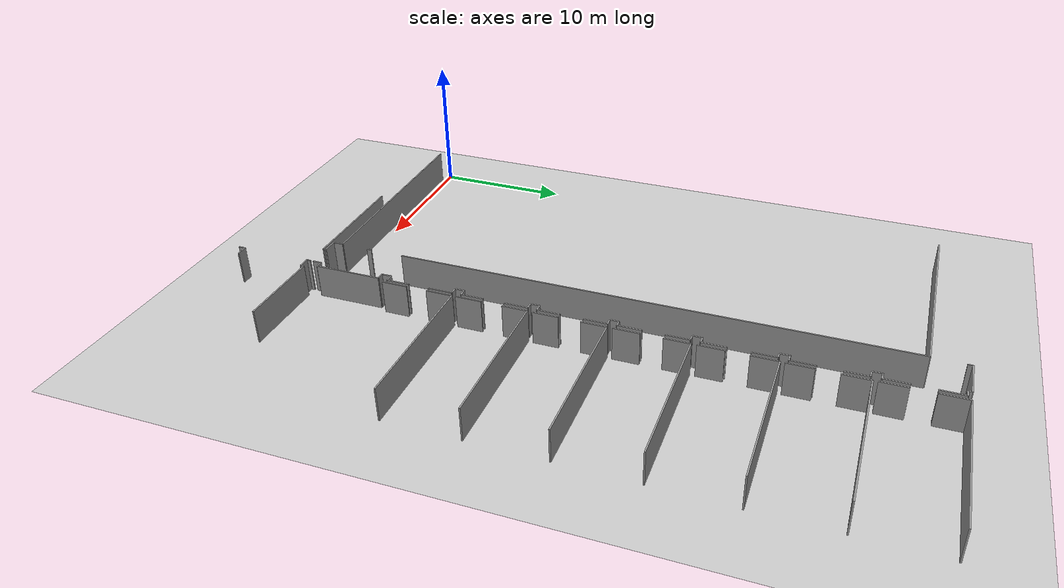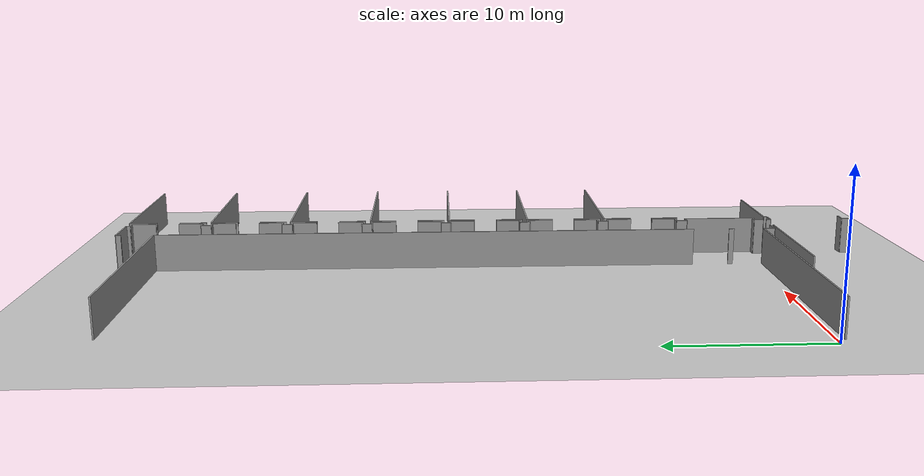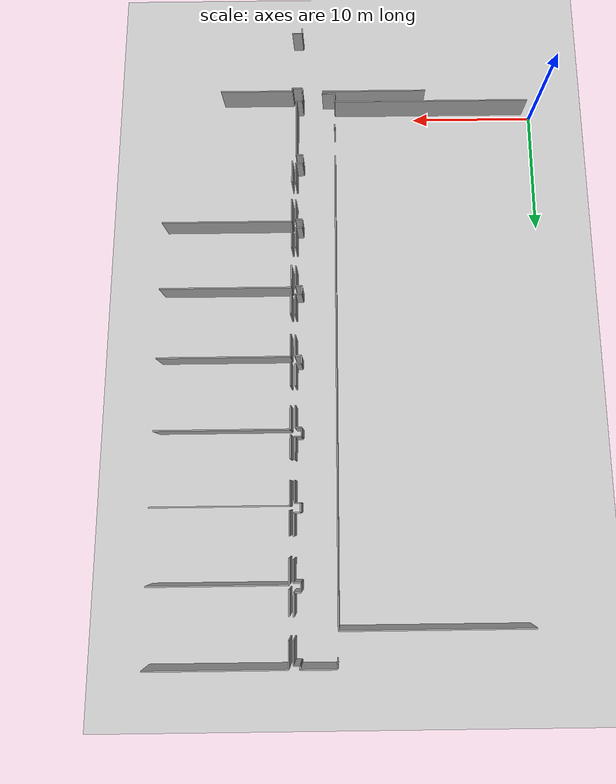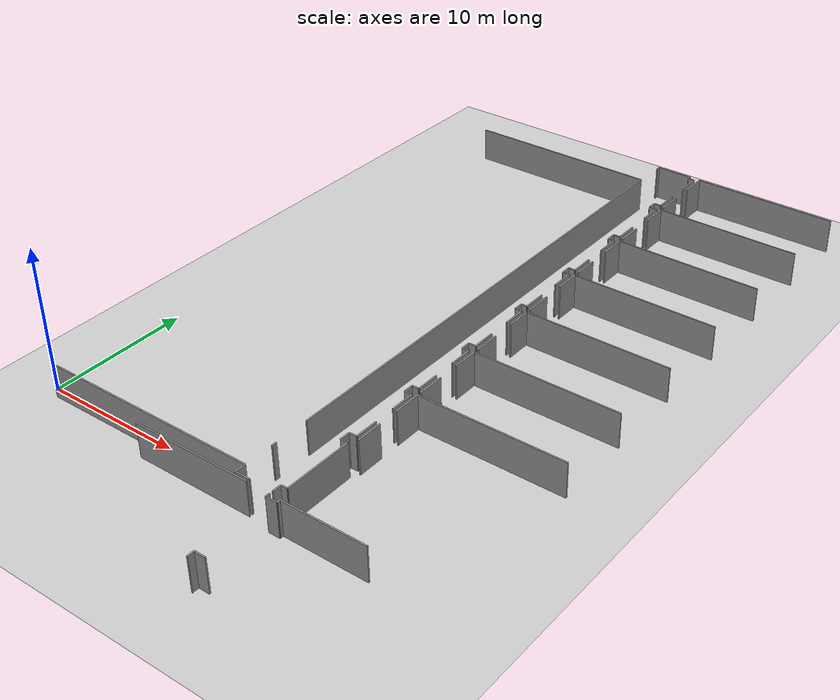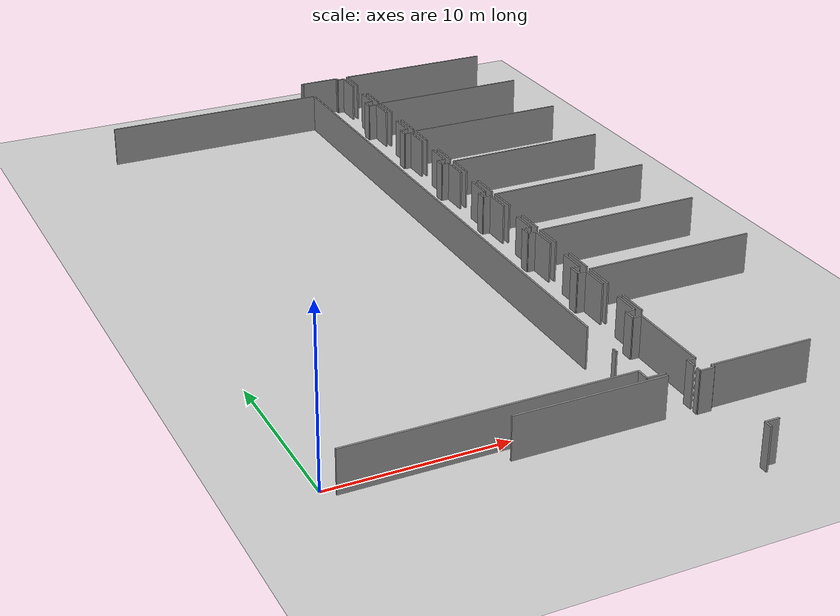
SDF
<sdf version="1.6">
 <world name="default">
  <model name="ground_plane">
   <static>1</static>
   <link name="link">
    <collision name="collision">
     <geometry><plane><normal>0 0 1</normal><size>100 100</size></plane></geometry>
     <surface><friction><ode><mu>100</mu><mu2>50</mu2></ode></friction></surface>
    </collision>
    <visual name="visual">
     <cast_shadows>0</cast_shadows>
     <geometry><plane><normal>0 0 1</normal><size>100 100</size></plane></geometry>
     <material>
      <script><uri>file://media/materials/scripts/gazebo.material</uri><name>Gazebo/Grey</name></script>
     </material>
    </visual>
   </link>
  </model>
  <model name="50015848">
   <static>1</static>
   <link name="Wall_534">
    <collision name="Wall_534_Collision">
     <geometry><box><size>8.658475474 0.1 2.5</size></box></geometry>
     <pose>4.329237737 0 1.25 0 0 0</pose>
    </collision>
    <visual name="Wall_534_Visual">
     <pose>4.329237737 0 1.25 0 0 0</pose>
     <geometry><box><size>8.658475474 0.1 2.5</size></box></geometry>
     <material>
      <script><uri>file://media/materials/scripts/gazebo.material</uri><name>Gazebo/Grey</name></script>
      <ambient>1 1 1 1</ambient>
     </material>
    </visual>
    <pose>140.965309009 -45.2511592208 0 0 0 0.0</pose>
   </link>
   <link name="Wall_535">
    <collision name="Wall_535_Collision">
     <geometry><box><size>0.300414211318 0.1 2.5</size></box></geometry>
     <pose>0.150207105659 0 1.25 0 0 0</pose>
    </collision>
    <visual name="Wall_535_Visual">
     <pose>0.150207105659 0 1.25 0 0 0</pose>
     <geometry><box><size>0.300414211318 0.1 2.5</size></box></geometry>
     <material>
      <script><uri>file://media/materials/scripts/gazebo.material</uri><name>Gazebo/Grey</name></script>
      <ambient>1 1 1 1</ambient>
     </material>
    </visual>
    <pose>151.308793586 -45.2511592208 0 0 0 -1.57079632679</pose>
   </link>
   <link name="Wall_536">
    <collision name="Wall_536_Collision">
     <geometry><box><size>0.817512321677 0.1 2.5</size></box></geometry>
     <pose>0.408756160838 0 1.25 0 0 0</pose>
    </collision>
    <visual name="Wall_536_Visual">
     <pose>0.408756160838 0 1.25 0 0 0</pose>
     <geometry><box><size>0.817512321677 0.1 2.5</size></box></geometry>
     <material>
      <script><uri>file://media/materials/scripts/gazebo.material</uri><name>Gazebo/Grey</name></script>
      <ambient>1 1 1 1</ambient>
     </material>
    </visual>
    <pose>151.308793586 -45.5515734321 0 0 0 0.0</pose>
   </link>
   <link name="Wall_537">
    <collision name="Wall_537_Collision">
     <geometry><box><size>0.250429752171 0.1 2.5</size></box></geometry>
     <pose>0.125214876085 0 1.25 0 0 0</pose>
    </collision>
    <visual name="Wall_537_Visual">
     <pose>0.125214876085 0 1.25 0 0 0</pose>
     <geometry><box><size>0.250429752171 0.1 2.5</size></box></geometry>
     <material>
      <script><uri>file://media/materials/scripts/gazebo.material</uri><name>Gazebo/Grey</name></script>
      <ambient>1 1 1 1</ambient>
     </material>
    </visual>
    <pose>152.126305907 -45.5515734321 0 0 0 1.57079632679</pose>
   </link>
   <link name="Wall_538">
    <collision name="Wall_538_Collision">
     <geometry><box><size>6.00574694416 0.1 2.5</size></box></geometry>
     <pose>3.00287347208 0 1.25 0 0 0</pose>
    </collision>
    <visual name="Wall_538_Visual">
     <pose>3.00287347208 0 1.25 0 0 0</pose>
     <geometry><box><size>6.00574694416 0.1 2.5</size></box></geometry>
     <material>
      <script><uri>file://media/materials/scripts/gazebo.material</uri><name>Gazebo/Grey</name></script>
      <ambient>1 1 1 1</ambient>
     </material>
    </visual>
    <pose>152.126305907 -45.3011436799 0 0 0 0.0</pose>
   </link>
   <link name="Wall_625">
    <collision name="Wall_625_Collision">
     <geometry><box><size>0.807363192916 0.1 2.5</size></box></geometry>
     <pose>0.403681596458 0 1.25 0 0 0</pose>
    </collision>
    <visual name="Wall_625_Visual">
     <pose>0.403681596458 0 1.25 0 0 0</pose>
     <geometry><box><size>0.807363192916 0.1 2.5</size></box></geometry>
     <material>
      <script><uri>file://media/materials/scripts/gazebo.material</uri><name>Gazebo/Grey</name></script>
      <ambient>1 1 1 1</ambient>
     </material>
    </visual>
    <pose>152.159290576 -50.7700017127 0 0 0 3.14159265359</pose>
   </link>
   <link name="Wall_626">
    <collision name="Wall_626_Collision">
     <geometry><box><size>0.491979016676 0.1 2.5</size></box></geometry>
     <pose>0.245989508338 0 1.25 0 0 0</pose>
    </collision>
    <visual name="Wall_626_Visual">
     <pose>0.245989508338 0 1.25 0 0 0</pose>
     <geometry><box><size>0.491979016676 0.1 2.5</size></box></geometry>
     <material>
      <script><uri>file://media/materials/scripts/gazebo.material</uri><name>Gazebo/Grey</name></script>
      <ambient>1 1 1 1</ambient>
     </material>
    </visual>
    <pose>151.351927383 -50.7700017127 0 0 0 -1.57079632679</pose>
   </link>
   <link name="Wall_653">
    <collision name="Wall_653_Collision">
     <geometry><box><size>0.479800062163 0.1 2.5</size></box></geometry>
     <pose>0.239900031082 0 1.25 0 0 0</pose>
    </collision>
    <visual name="Wall_653_Visual">
     <pose>0.239900031082 0 1.25 0 0 0</pose>
     <geometry><box><size>0.479800062163 0.1 2.5</size></box></geometry>
     <material>
      <script><uri>file://media/materials/scripts/gazebo.material</uri><name>Gazebo/Grey</name></script>
      <ambient>1 1 1 1</ambient>
     </material>
    </visual>
    <pose>151.792653299 -44.3927966559 0 0 0 3.14159265359</pose>
   </link>
   <link name="Wall_654">
    <collision name="Wall_654_Collision">
     <geometry><box><size>0.630768352479 0.1 2.5</size></box></geometry>
     <pose>0.31538417624 0 1.25 0 0 0</pose>
    </collision>
    <visual name="Wall_654_Visual">
     <pose>0.31538417624 0 1.25 0 0 0</pose>
     <geometry><box><size>0.630768352479 0.1 2.5</size></box></geometry>
     <material>
      <script><uri>file://media/materials/scripts/gazebo.material</uri><name>Gazebo/Grey</name></script>
      <ambient>1 1 1 1</ambient>
     </material>
    </visual>
    <pose>151.312853237 -44.3927966559 0 0 0 -1.57079632679</pose>
   </link>
   <link name="Wall_655">
    <collision name="Wall_655_Collision">
     <geometry><box><size>1.07352409467 0.1 2.5</size></box></geometry>
     <pose>0.536762047333 0 1.25 0 0 0</pose>
    </collision>
    <visual name="Wall_655_Visual">
     <pose>0.536762047333 0 1.25 0 0 0</pose>
     <geometry><box><size>1.07352409467 0.1 2.5</size></box></geometry>
     <material>
      <script><uri>file://media/materials/scripts/gazebo.material</uri><name>Gazebo/Grey</name></script>
      <ambient>1 1 1 1</ambient>
     </material>
    </visual>
    <pose>149.638246992 -45.0235650083 0 0 0 3.14159265359</pose>
   </link>
   <link name="Wall_656">
    <collision name="Wall_656_Collision">
     <geometry><box><size>0.75458772336 0.1 2.5</size></box></geometry>
     <pose>0.37729386168 0 1.25 0 0 0</pose>
    </collision>
    <visual name="Wall_656_Visual">
     <pose>0.37729386168 0 1.25 0 0 0</pose>
     <geometry><box><size>0.75458772336 0.1 2.5</size></box></geometry>
     <material>
      <script><uri>file://media/materials/scripts/gazebo.material</uri><name>Gazebo/Grey</name></script>
      <ambient>1 1 1 1</ambient>
     </material>
    </visual>
    <pose>148.564722897 -45.0235650083 0 0 0 1.57079632679</pose>
   </link>
   <link name="Wall_657">
    <collision name="Wall_657_Collision">
     <geometry><box><size>16.143457935 0.1 2.5</size></box></geometry>
     <pose>8.07172896752 0 1.25 0 0 0</pose>
    </collision>
    <visual name="Wall_657_Visual">
     <pose>8.07172896752 0 1.25 0 0 0</pose>
     <geometry><box><size>16.143457935 0.1 2.5</size></box></geometry>
     <material>
      <script><uri>file://media/materials/scripts/gazebo.material</uri><name>Gazebo/Grey</name></script>
      <ambient>1 1 1 1</ambient>
     </material>
    </visual>
    <pose>148.564722897 -44.268977285 0 0 0 3.14159265359</pose>
   </link>
   <link name="Wall_703">
    <collision name="Wall_703_Collision">
     <geometry><box><size>0.337204803075 0.1 2.5</size></box></geometry>
     <pose>0.168602401538 0 1.25 0 0 0</pose>
    </collision>
    <visual name="Wall_703_Visual">
     <pose>0.168602401538 0 1.25 0 0 0</pose>
     <geometry><box><size>0.337204803075 0.1 2.5</size></box></geometry>
     <material>
      <script><uri>file://media/materials/scripts/gazebo.material</uri><name>Gazebo/Grey</name></script>
      <ambient>1 1 1 1</ambient>
     </material>
    </visual>
    <pose>148.672811118 -0.360801527444 0 0 0 1.57079632679</pose>
   </link>
   <link name="Wall_704">
    <collision name="Wall_704_Collision">
     <geometry><box><size>2.65247480162 0.1 2.5</size></box></geometry>
     <pose>1.32623740081 0 1.25 0 0 0</pose>
    </collision>
    <visual name="Wall_704_Visual">
     <pose>1.32623740081 0 1.25 0 0 0</pose>
     <geometry><box><size>2.65247480162 0.1 2.5</size></box></geometry>
     <material>
      <script><uri>file://media/materials/scripts/gazebo.material</uri><name>Gazebo/Grey</name></script>
      <ambient>1 1 1 1</ambient>
     </material>
    </visual>
    <pose>148.672811118 -0.0235967243687 0 0 0 0.0</pose>
   </link>
   <link name="Wall_705">
    <collision name="Wall_705_Collision">
     <geometry><box><size>0.266922086407 0.1 2.5</size></box></geometry>
     <pose>0.133461043204 0 1.25 0 0 0</pose>
    </collision>
    <visual name="Wall_705_Visual">
     <pose>0.133461043204 0 1.25 0 0 0</pose>
     <geometry><box><size>0.266922086407 0.1 2.5</size></box></geometry>
     <material>
      <script><uri>file://media/materials/scripts/gazebo.material</uri><name>Gazebo/Grey</name></script>
      <ambient>1 1 1 1</ambient>
     </material>
    </visual>
    <pose>151.32528592 -0.0235967243687 0 0 0 -1.57079632679</pose>
   </link>
   <link name="Wall_706">
    <collision name="Wall_706_Collision">
     <geometry><box><size>0.467367379432 0.1 2.5</size></box></geometry>
     <pose>0.233683689716 0 1.25 0 0 0</pose>
    </collision>
    <visual name="Wall_706_Visual">
     <pose>0.233683689716 0 1.25 0 0 0</pose>
     <geometry><box><size>0.467367379432 0.1 2.5</size></box></geometry>
     <material>
      <script><uri>file://media/materials/scripts/gazebo.material</uri><name>Gazebo/Grey</name></script>
      <ambient>1 1 1 1</ambient>
     </material>
    </visual>
    <pose>151.32528592 -0.290518810776 0 0 0 0.0</pose>
   </link>
   <link name="Wall_707">
    <collision name="Wall_707_Collision">
     <geometry><box><size>1.66826304004 0.1 2.5</size></box></geometry>
     <pose>0.834131520022 0 1.25 0 0 0</pose>
    </collision>
    <visual name="Wall_707_Visual">
     <pose>0.834131520022 0 1.25 0 0 0</pose>
     <geometry><box><size>1.66826304004 0.1 2.5</size></box></geometry>
     <material>
      <script><uri>file://media/materials/scripts/gazebo.material</uri><name>Gazebo/Grey</name></script>
      <ambient>1 1 1 1</ambient>
     </material>
    </visual>
    <pose>151.792653299 -0.290518810776 0 0 0 -1.57079632679</pose>
   </link>
   <link name="Wall_708">
    <collision name="Wall_708_Collision">
     <geometry><box><size>1.66826304004 0.1 2.5</size></box></geometry>
     <pose>0.834131520022 0 1.25 0 0 0</pose>
    </collision>
    <visual name="Wall_708_Visual">
     <pose>0.834131520022 0 1.25 0 0 0</pose>
     <geometry><box><size>1.66826304004 0.1 2.5</size></box></geometry>
     <material>
      <script><uri>file://media/materials/scripts/gazebo.material</uri><name>Gazebo/Grey</name></script>
      <ambient>1 1 1 1</ambient>
     </material>
    </visual>
    <pose>151.792653299 -3.53341917805 0 0 0 -1.57079632679</pose>
   </link>
   <link name="Wall_709">
    <collision name="Wall_709_Collision">
     <geometry><box><size>0.515068284607 0.1 2.5</size></box></geometry>
     <pose>0.257534142303 0 1.25 0 0 0</pose>
    </collision>
    <visual name="Wall_709_Visual">
     <pose>0.257534142303 0 1.25 0 0 0</pose>
     <geometry><box><size>0.515068284607 0.1 2.5</size></box></geometry>
     <material>
      <script><uri>file://media/materials/scripts/gazebo.material</uri><name>Gazebo/Grey</name></script>
      <ambient>1 1 1 1</ambient>
     </material>
    </visual>
    <pose>151.792653299 -5.20168221809 0 0 0 3.14159265359</pose>
   </link>
   <link name="Wall_710">
    <collision name="Wall_710_Collision">
     <geometry><box><size>0.681767724502 0.1 2.5</size></box></geometry>
     <pose>0.340883862251 0 1.25 0 0 0</pose>
    </collision>
    <visual name="Wall_710_Visual">
     <pose>0.340883862251 0 1.25 0 0 0</pose>
     <geometry><box><size>0.681767724502 0.1 2.5</size></box></geometry>
     <material>
      <script><uri>file://media/materials/scripts/gazebo.material</uri><name>Gazebo/Grey</name></script>
      <ambient>1 1 1 1</ambient>
     </material>
    </visual>
    <pose>151.277585015 -5.20168221809 0 0 0 -1.57079632679</pose>
   </link>
   <link name="Wall_711">
    <collision name="Wall_711_Collision">
     <geometry><box><size>0.551097691708 0.1 2.5</size></box></geometry>
     <pose>0.275548845854 0 1.25 0 0 0</pose>
    </collision>
    <visual name="Wall_711_Visual">
     <pose>0.275548845854 0 1.25 0 0 0</pose>
     <geometry><box><size>0.551097691708 0.1 2.5</size></box></geometry>
     <material>
      <script><uri>file://media/materials/scripts/gazebo.material</uri><name>Gazebo/Grey</name></script>
      <ambient>1 1 1 1</ambient>
     </material>
    </visual>
    <pose>151.277585015 -5.88344994259 0 0 0 0.0</pose>
   </link>
   <link name="Wall_712">
    <collision name="Wall_712_Collision">
     <geometry><box><size>1.62487551459 0.1 2.5</size></box></geometry>
     <pose>0.812437757296 0 1.25 0 0 0</pose>
    </collision>
    <visual name="Wall_712_Visual">
     <pose>0.812437757296 0 1.25 0 0 0</pose>
     <geometry><box><size>1.62487551459 0.1 2.5</size></box></geometry>
     <material>
      <script><uri>file://media/materials/scripts/gazebo.material</uri><name>Gazebo/Grey</name></script>
      <ambient>1 1 1 1</ambient>
     </material>
    </visual>
    <pose>151.828682707 -5.88344994259 0 0 0 -1.57079632679</pose>
   </link>
   <link name="Wall_713">
    <collision name="Wall_713_Collision">
     <geometry><box><size>1.70175516496 0.1 2.5</size></box></geometry>
     <pose>0.850877582478 0 1.25 0 0 0</pose>
    </collision>
    <visual name="Wall_713_Visual">
     <pose>0.850877582478 0 1.25 0 0 0</pose>
     <geometry><box><size>1.70175516496 0.1 2.5</size></box></geometry>
     <material>
      <script><uri>file://media/materials/scripts/gazebo.material</uri><name>Gazebo/Grey</name></script>
      <ambient>1 1 1 1</ambient>
     </material>
    </visual>
    <pose>151.828682707 -9.11569372467 0 0 0 -1.57079632679</pose>
   </link>
   <link name="Wall_714">
    <collision name="Wall_714_Collision">
     <geometry><box><size>0.503396786532 0.1 2.5</size></box></geometry>
     <pose>0.251698393266 0 1.25 0 0 0</pose>
    </collision>
    <visual name="Wall_714_Visual">
     <pose>0.251698393266 0 1.25 0 0 0</pose>
     <geometry><box><size>0.503396786532 0.1 2.5</size></box></geometry>
     <material>
      <script><uri>file://media/materials/scripts/gazebo.material</uri><name>Gazebo/Grey</name></script>
      <ambient>1 1 1 1</ambient>
     </material>
    </visual>
    <pose>151.828682707 -10.8174488896 0 0 0 3.14159265359</pose>
   </link>
   <link name="Wall_715">
    <collision name="Wall_715_Collision">
     <geometry><box><size>0.684051278473 0.1 2.5</size></box></geometry>
     <pose>0.342025639237 0 1.25 0 0 0</pose>
    </collision>
    <visual name="Wall_715_Visual">
     <pose>0.342025639237 0 1.25 0 0 0</pose>
     <geometry><box><size>0.684051278473 0.1 2.5</size></box></geometry>
     <material>
      <script><uri>file://media/materials/scripts/gazebo.material</uri><name>Gazebo/Grey</name></script>
      <ambient>1 1 1 1</ambient>
     </material>
    </visual>
    <pose>151.32528592 -10.8174488896 0 0 0 -1.57079632679</pose>
   </link>
   <link name="Wall_716">
    <collision name="Wall_716_Collision">
     <geometry><box><size>0.450621316976 0.1 2.5</size></box></geometry>
     <pose>0.225310658488 0 1.25 0 0 0</pose>
    </collision>
    <visual name="Wall_716_Visual">
     <pose>0.225310658488 0 1.25 0 0 0</pose>
     <geometry><box><size>0.450621316976 0.1 2.5</size></box></geometry>
     <material>
      <script><uri>file://media/materials/scripts/gazebo.material</uri><name>Gazebo/Grey</name></script>
      <ambient>1 1 1 1</ambient>
     </material>
    </visual>
    <pose>151.32528592 -11.5015001681 0 0 0 0.0</pose>
   </link>
   <link name="Wall_717">
    <collision name="Wall_717_Collision">
     <geometry><box><size>1.6850091025 0.1 2.5</size></box></geometry>
     <pose>0.84250455125 0 1.25 0 0 0</pose>
    </collision>
    <visual name="Wall_717_Visual">
     <pose>0.84250455125 0 1.25 0 0 0</pose>
     <geometry><box><size>1.6850091025 0.1 2.5</size></box></geometry>
     <material>
      <script><uri>file://media/materials/scripts/gazebo.material</uri><name>Gazebo/Grey</name></script>
      <ambient>1 1 1 1</ambient>
     </material>
    </visual>
    <pose>151.775907237 -11.5015001681 0 0 0 -1.57079632679</pose>
   </link>
   <link name="Wall_718">
    <collision name="Wall_718_Collision">
     <geometry><box><size>1.71190429372 0.1 2.5</size></box></geometry>
     <pose>0.855952146858 0 1.25 0 0 0</pose>
    </collision>
    <visual name="Wall_718_Visual">
     <pose>0.855952146858 0 1.25 0 0 0</pose>
     <geometry><box><size>1.71190429372 0.1 2.5</size></box></geometry>
     <material>
      <script><uri>file://media/materials/scripts/gazebo.material</uri><name>Gazebo/Grey</name></script>
      <ambient>1 1 1 1</ambient>
     </material>
    </visual>
    <pose>151.775907237 -14.7038040203 0 0 0 -1.57079632679</pose>
   </link>
   <link name="Wall_719">
    <collision name="Wall_719_Collision">
     <geometry><box><size>0.498322222152 0.1 2.5</size></box></geometry>
     <pose>0.249161111076 0 1.25 0 0 0</pose>
    </collision>
    <visual name="Wall_719_Visual">
     <pose>0.249161111076 0 1.25 0 0 0</pose>
     <geometry><box><size>0.498322222152 0.1 2.5</size></box></geometry>
     <material>
      <script><uri>file://media/materials/scripts/gazebo.material</uri><name>Gazebo/Grey</name></script>
      <ambient>1 1 1 1</ambient>
     </material>
    </visual>
    <pose>151.775907237 -16.415708314 0 0 0 3.14159265359</pose>
   </link>
   <link name="Wall_720">
    <collision name="Wall_720_Collision">
     <geometry><box><size>0.681767724502 0.1 2.5</size></box></geometry>
     <pose>0.340883862251 0 1.25 0 0 0</pose>
    </collision>
    <visual name="Wall_720_Visual">
     <pose>0.340883862251 0 1.25 0 0 0</pose>
     <geometry><box><size>0.681767724502 0.1 2.5</size></box></geometry>
     <material>
      <script><uri>file://media/materials/scripts/gazebo.material</uri><name>Gazebo/Grey</name></script>
      <ambient>1 1 1 1</ambient>
     </material>
    </visual>
    <pose>151.277585015 -16.415708314 0 0 0 -1.57079632679</pose>
   </link>
   <link name="Wall_721">
    <collision name="Wall_721_Collision">
     <geometry><box><size>0.478785149287 0.1 2.5</size></box></geometry>
     <pose>0.239392574644 0 1.25 0 0 0</pose>
    </collision>
    <visual name="Wall_721_Visual">
     <pose>0.239392574644 0 1.25 0 0 0</pose>
     <geometry><box><size>0.478785149287 0.1 2.5</size></box></geometry>
     <material>
      <script><uri>file://media/materials/scripts/gazebo.material</uri><name>Gazebo/Grey</name></script>
      <ambient>1 1 1 1</ambient>
     </material>
    </visual>
    <pose>151.277585015 -17.0974760385 0 0 0 0.0</pose>
   </link>
   <link name="Wall_722">
    <collision name="Wall_722_Collision">
     <geometry><box><size>1.68272554853 0.1 2.5</size></box></geometry>
     <pose>0.841362774264 0 1.25 0 0 0</pose>
    </collision>
    <visual name="Wall_722_Visual">
     <pose>0.841362774264 0 1.25 0 0 0</pose>
     <geometry><box><size>1.68272554853 0.1 2.5</size></box></geometry>
     <material>
      <script><uri>file://media/materials/scripts/gazebo.material</uri><name>Gazebo/Grey</name></script>
      <ambient>1 1 1 1</ambient>
     </material>
    </visual>
    <pose>151.756370164 -17.0974760385 0 0 0 -1.57079632679</pose>
   </link>
   <link name="Wall_723">
    <collision name="Wall_723_Collision">
     <geometry><box><size>1.70302380605 0.1 2.5</size></box></geometry>
     <pose>0.851511903025 0 1.25 0 0 0</pose>
    </collision>
    <visual name="Wall_723_Visual">
     <pose>0.851511903025 0 1.25 0 0 0</pose>
     <geometry><box><size>1.70302380605 0.1 2.5</size></box></geometry>
     <material>
      <script><uri>file://media/materials/scripts/gazebo.material</uri><name>Gazebo/Grey</name></script>
      <ambient>1 1 1 1</ambient>
     </material>
    </visual>
    <pose>151.756370164 -20.2926755006 0 0 0 -1.57079632679</pose>
   </link>
   <link name="Wall_724">
    <collision name="Wall_724_Collision">
     <geometry><box><size>0.442248285749 0.1 2.5</size></box></geometry>
     <pose>0.221124142874 0 1.25 0 0 0</pose>
    </collision>
    <visual name="Wall_724_Visual">
     <pose>0.221124142874 0 1.25 0 0 0</pose>
     <geometry><box><size>0.442248285749 0.1 2.5</size></box></geometry>
     <material>
      <script><uri>file://media/materials/scripts/gazebo.material</uri><name>Gazebo/Grey</name></script>
      <ambient>1 1 1 1</ambient>
     </material>
    </visual>
    <pose>151.756370164 -21.9956993067 0 0 0 3.14159265359</pose>
   </link>
   <link name="Wall_725">
    <collision name="Wall_725_Collision">
     <geometry><box><size>0.630768352479 0.1 2.5</size></box></geometry>
     <pose>0.31538417624 0 1.25 0 0 0</pose>
    </collision>
    <visual name="Wall_725_Visual">
     <pose>0.31538417624 0 1.25 0 0 0</pose>
     <geometry><box><size>0.630768352479 0.1 2.5</size></box></geometry>
     <material>
      <script><uri>file://media/materials/scripts/gazebo.material</uri><name>Gazebo/Grey</name></script>
      <ambient>1 1 1 1</ambient>
     </material>
    </visual>
    <pose>151.314121878 -21.9956993067 0 0 0 -1.57079632679</pose>
   </link>
   <link name="Wall_726">
    <collision name="Wall_726_Collision">
     <geometry><box><size>0.491979016676 0.1 2.5</size></box></geometry>
     <pose>0.245989508338 0 1.25 0 0 0</pose>
    </collision>
    <visual name="Wall_726_Visual">
     <pose>0.245989508338 0 1.25 0 0 0</pose>
     <geometry><box><size>0.491979016676 0.1 2.5</size></box></geometry>
     <material>
      <script><uri>file://media/materials/scripts/gazebo.material</uri><name>Gazebo/Grey</name></script>
      <ambient>1 1 1 1</ambient>
     </material>
    </visual>
    <pose>151.314121878 -22.6264676592 0 0 0 0.0</pose>
   </link>
   <link name="Wall_727">
    <collision name="Wall_727_Collision">
     <geometry><box><size>1.68018826634 0.1 2.5</size></box></geometry>
     <pose>0.840094133169 0 1.25 0 0 0</pose>
    </collision>
    <visual name="Wall_727_Visual">
     <pose>0.840094133169 0 1.25 0 0 0</pose>
     <geometry><box><size>1.68018826634 0.1 2.5</size></box></geometry>
     <material>
      <script><uri>file://media/materials/scripts/gazebo.material</uri><name>Gazebo/Grey</name></script>
      <ambient>1 1 1 1</ambient>
     </material>
    </visual>
    <pose>151.806100895 -22.6264676592 0 0 0 -1.57079632679</pose>
   </link>
   <link name="Wall_728">
    <collision name="Wall_728_Collision">
     <geometry><box><size>1.65608408553 0.1 2.5</size></box></geometry>
     <pose>0.828042042766 0 1.25 0 0 0</pose>
    </collision>
    <visual name="Wall_728_Visual">
     <pose>0.828042042766 0 1.25 0 0 0</pose>
     <geometry><box><size>1.65608408553 0.1 2.5</size></box></geometry>
     <material>
      <script><uri>file://media/materials/scripts/gazebo.material</uri><name>Gazebo/Grey</name></script>
      <ambient>1 1 1 1</ambient>
     </material>
    </visual>
    <pose>151.806100895 -25.9155465623 0 0 0 -1.57079632679</pose>
   </link>
   <link name="Wall_729">
    <collision name="Wall_729_Collision">
     <geometry><box><size>0.517098110359 0.1 2.5</size></box></geometry>
     <pose>0.25854905518 0 1.25 0 0 0</pose>
    </collision>
    <visual name="Wall_729_Visual">
     <pose>0.25854905518 0 1.25 0 0 0</pose>
     <geometry><box><size>0.517098110359 0.1 2.5</size></box></geometry>
     <material>
      <script><uri>file://media/materials/scripts/gazebo.material</uri><name>Gazebo/Grey</name></script>
      <ambient>1 1 1 1</ambient>
     </material>
    </visual>
    <pose>151.806100895 -27.5716306478 0 0 0 3.14159265359</pose>
   </link>
   <link name="Wall_730">
    <collision name="Wall_730_Collision">
     <geometry><box><size>0.668573857113 0.1 2.5</size></box></geometry>
     <pose>0.334286928556 0 1.25 0 0 0</pose>
    </collision>
    <visual name="Wall_730_Visual">
     <pose>0.334286928556 0 1.25 0 0 0</pose>
     <geometry><box><size>0.668573857113 0.1 2.5</size></box></geometry>
     <material>
      <script><uri>file://media/materials/scripts/gazebo.material</uri><name>Gazebo/Grey</name></script>
      <ambient>1 1 1 1</ambient>
     </material>
    </visual>
    <pose>151.289002785 -27.5716306478 0 0 0 -1.57079632679</pose>
   </link>
   <link name="Wall_731">
    <collision name="Wall_731_Collision">
     <geometry><box><size>0.491979016676 0.1 2.5</size></box></geometry>
     <pose>0.245989508338 0 1.25 0 0 0</pose>
    </collision>
    <visual name="Wall_731_Visual">
     <pose>0.245989508338 0 1.25 0 0 0</pose>
     <geometry><box><size>0.491979016676 0.1 2.5</size></box></geometry>
     <material>
      <script><uri>file://media/materials/scripts/gazebo.material</uri><name>Gazebo/Grey</name></script>
      <ambient>1 1 1 1</ambient>
     </material>
    </visual>
    <pose>151.289002785 -28.2402045049 0 0 0 0.0</pose>
   </link>
   <link name="Wall_732">
    <collision name="Wall_732_Collision">
     <geometry><box><size>1.70302380605 0.1 2.5</size></box></geometry>
     <pose>0.851511903025 0 1.25 0 0 0</pose>
    </collision>
    <visual name="Wall_732_Visual">
     <pose>0.851511903025 0 1.25 0 0 0</pose>
     <geometry><box><size>1.70302380605 0.1 2.5</size></box></geometry>
     <material>
      <script><uri>file://media/materials/scripts/gazebo.material</uri><name>Gazebo/Grey</name></script>
      <ambient>1 1 1 1</ambient>
     </material>
    </visual>
    <pose>151.780981801 -28.2402045049 0 0 0 -1.57079632679</pose>
   </link>
   <link name="Wall_733">
    <collision name="Wall_733_Collision">
     <geometry><box><size>1.64263648992 0.1 2.5</size></box></geometry>
     <pose>0.821318244962 0 1.25 0 0 0</pose>
    </collision>
    <visual name="Wall_733_Visual">
     <pose>0.821318244962 0 1.25 0 0 0</pose>
     <geometry><box><size>1.64263648992 0.1 2.5</size></box></geometry>
     <material>
      <script><uri>file://media/materials/scripts/gazebo.material</uri><name>Gazebo/Grey</name></script>
      <ambient>1 1 1 1</ambient>
     </material>
    </visual>
    <pose>151.780981801 -31.4884331648 0 0 0 -1.57079632679</pose>
   </link>
   <link name="Wall_734">
    <collision name="Wall_734_Collision">
     <geometry><box><size>0.50644152516 0.1 2.5</size></box></geometry>
     <pose>0.25322076258 0 1.25 0 0 0</pose>
    </collision>
    <visual name="Wall_734_Visual">
     <pose>0.25322076258 0 1.25 0 0 0</pose>
     <geometry><box><size>0.50644152516 0.1 2.5</size></box></geometry>
     <material>
      <script><uri>file://media/materials/scripts/gazebo.material</uri><name>Gazebo/Grey</name></script>
      <ambient>1 1 1 1</ambient>
     </material>
    </visual>
    <pose>151.780981801 -33.1310696547 0 0 0 3.14159265359</pose>
   </link>
   <link name="Wall_735">
    <collision name="Wall_735_Collision">
     <geometry><box><size>0.690648212168 0.1 2.5</size></box></geometry>
     <pose>0.345324106084 0 1.25 0 0 0</pose>
    </collision>
    <visual name="Wall_735_Visual">
     <pose>0.345324106084 0 1.25 0 0 0</pose>
     <geometry><box><size>0.690648212168 0.1 2.5</size></box></geometry>
     <material>
      <script><uri>file://media/materials/scripts/gazebo.material</uri><name>Gazebo/Grey</name></script>
      <ambient>1 1 1 1</ambient>
     </material>
    </visual>
    <pose>151.274540276 -33.1310696547 0 0 0 -1.57079632679</pose>
   </link>
   <link name="Wall_736">
    <collision name="Wall_736_Collision">
     <geometry><box><size>0.537142639662 0.1 2.5</size></box></geometry>
     <pose>0.268571319831 0 1.25 0 0 0</pose>
    </collision>
    <visual name="Wall_736_Visual">
     <pose>0.268571319831 0 1.25 0 0 0</pose>
     <geometry><box><size>0.537142639662 0.1 2.5</size></box></geometry>
     <material>
      <script><uri>file://media/materials/scripts/gazebo.material</uri><name>Gazebo/Grey</name></script>
      <ambient>1 1 1 1</ambient>
     </material>
    </visual>
    <pose>151.274540276 -33.8217178669 0 0 0 0.0</pose>
   </link>
   <link name="Wall_737">
    <collision name="Wall_737_Collision">
     <geometry><box><size>1.74590387506 0.1 2.5</size></box></geometry>
     <pose>0.872951937532 0 1.25 0 0 0</pose>
    </collision>
    <visual name="Wall_737_Visual">
     <pose>0.872951937532 0 1.25 0 0 0</pose>
     <geometry><box><size>1.74590387506 0.1 2.5</size></box></geometry>
     <material>
      <script><uri>file://media/materials/scripts/gazebo.material</uri><name>Gazebo/Grey</name></script>
      <ambient>1 1 1 1</ambient>
     </material>
    </visual>
    <pose>151.811682916 -33.8217178669 0 0 0 -1.57079632679</pose>
   </link>
   <link name="Wall_738">
    <collision name="Wall_738_Collision">
     <geometry><box><size>1.67866589702 0.1 2.5</size></box></geometry>
     <pose>0.839332948512 0 1.25 0 0 0</pose>
    </collision>
    <visual name="Wall_738_Visual">
     <pose>0.839332948512 0 1.25 0 0 0</pose>
     <geometry><box><size>1.67866589702 0.1 2.5</size></box></geometry>
     <material>
      <script><uri>file://media/materials/scripts/gazebo.material</uri><name>Gazebo/Grey</name></script>
      <ambient>1 1 1 1</ambient>
     </material>
    </visual>
    <pose>151.811682916 -37.0844090353 0 0 0 -1.57079632679</pose>
   </link>
   <link name="Wall_739">
    <collision name="Wall_739_Collision">
     <geometry><box><size>0.551858876365 0.1 2.5</size></box></geometry>
     <pose>0.275929438182 0 1.25 0 0 0</pose>
    </collision>
    <visual name="Wall_739_Visual">
     <pose>0.275929438182 0 1.25 0 0 0</pose>
     <geometry><box><size>0.551858876365 0.1 2.5</size></box></geometry>
     <material>
      <script><uri>file://media/materials/scripts/gazebo.material</uri><name>Gazebo/Grey</name></script>
      <ambient>1 1 1 1</ambient>
     </material>
    </visual>
    <pose>151.811682916 -38.7630749323 0 0 0 3.14159265359</pose>
   </link>
   <link name="Wall_740">
    <collision name="Wall_740_Collision">
     <geometry><box><size>0.724901521735 0.1 2.5</size></box></geometry>
     <pose>0.362450760867 0 1.25 0 0 0</pose>
    </collision>
    <visual name="Wall_740_Visual">
     <pose>0.362450760867 0 1.25 0 0 0</pose>
     <geometry><box><size>0.724901521735 0.1 2.5</size></box></geometry>
     <material>
      <script><uri>file://media/materials/scripts/gazebo.material</uri><name>Gazebo/Grey</name></script>
      <ambient>1 1 1 1</ambient>
     </material>
    </visual>
    <pose>151.259824039 -38.7630749323 0 0 0 -1.57079632679</pose>
   </link>
   <link name="Wall_741">
    <collision name="Wall_741_Collision">
     <geometry><box><size>0.52470995693 0.1 2.5</size></box></geometry>
     <pose>0.262354978465 0 1.25 0 0 0</pose>
    </collision>
    <visual name="Wall_741_Visual">
     <pose>0.262354978465 0 1.25 0 0 0</pose>
     <geometry><box><size>0.52470995693 0.1 2.5</size></box></geometry>
     <material>
      <script><uri>file://media/materials/scripts/gazebo.material</uri><name>Gazebo/Grey</name></script>
      <ambient>1 1 1 1</ambient>
     </material>
    </visual>
    <pose>151.259824039 -39.487976454 0 0 0 0.0</pose>
   </link>
   <link name="Wall_742">
    <collision name="Wall_742_Collision">
     <geometry><box><size>4.90482692207 0.1 2.5</size></box></geometry>
     <pose>2.45241346104 0 1.25 0 0 0</pose>
    </collision>
    <visual name="Wall_742_Visual">
     <pose>2.45241346104 0 1.25 0 0 0</pose>
     <geometry><box><size>4.90482692207 0.1 2.5</size></box></geometry>
     <material>
      <script><uri>file://media/materials/scripts/gazebo.material</uri><name>Gazebo/Grey</name></script>
      <ambient>1 1 1 1</ambient>
     </material>
    </visual>
    <pose>151.784533996 -39.487976454 0 0 0 -1.56914095611</pose>
   </link>
   <link name="Wall_743">
    <collision name="Wall_743_Collision">
     <geometry><box><size>0.350398670464 0.1 2.5</size></box></geometry>
     <pose>0.175199335232 0 1.25 0 0 0</pose>
    </collision>
    <visual name="Wall_743_Visual">
     <pose>0.175199335232 0 1.25 0 0 0</pose>
     <geometry><box><size>0.350398670464 0.1 2.5</size></box></geometry>
     <material>
      <script><uri>file://media/materials/scripts/gazebo.material</uri><name>Gazebo/Grey</name></script>
      <ambient>1 1 1 1</ambient>
     </material>
    </visual>
    <pose>148.589334534 -42.1983012896 0 0 0 1.57079632679</pose>
   </link>
   <link name="Wall_744">
    <collision name="Wall_744_Collision">
     <geometry><box><size>36.8080990048 0.1 2.5</size></box></geometry>
     <pose>18.4040495024 0 1.25 0 0 0</pose>
    </collision>
    <visual name="Wall_744_Visual">
     <pose>18.4040495024 0 1.25 0 0 0</pose>
     <geometry><box><size>36.8080990048 0.1 2.5</size></box></geometry>
     <material>
      <script><uri>file://media/materials/scripts/gazebo.material</uri><name>Gazebo/Grey</name></script>
      <ambient>1 1 1 1</ambient>
     </material>
    </visual>
    <pose>148.589334534 -39.3788733198 0 0 0 1.57079632679</pose>
   </link>
   <link name="Wall_745">
    <collision name="Wall_745_Collision">
     <geometry><box><size>14.2613020064 0.1 2.5</size></box></geometry>
     <pose>7.13065100318 0 1.25 0 0 0</pose>
    </collision>
    <visual name="Wall_745_Visual">
     <pose>7.13065100318 0 1.25 0 0 0</pose>
     <geometry><box><size>14.2613020064 0.1 2.5</size></box></geometry>
     <material>
      <script><uri>file://media/materials/scripts/gazebo.material</uri><name>Gazebo/Grey</name></script>
      <ambient>1 1 1 1</ambient>
     </material>
    </visual>
    <pose>148.589334534 -2.57077431509 0 0 0 3.14159265359</pose>
   </link>
   <link name="Wall_812">
    <collision name="Wall_812_Collision">
     <geometry><box><size>1.85703683499 0.1 2.5</size></box></geometry>
     <pose>0.928518417497 0 1.25 0 0 0</pose>
    </collision>
    <visual name="Wall_812_Visual">
     <pose>0.928518417497 0 1.25 0 0 0</pose>
     <geometry><box><size>1.85703683499 0.1 2.5</size></box></geometry>
     <material>
      <script><uri>file://media/materials/scripts/gazebo.material</uri><name>Gazebo/Grey</name></script>
      <ambient>1 1 1 1</ambient>
     </material>
    </visual>
    <pose>152.133410298 -5.41938103001 0 0 0 1.57079632679</pose>
   </link>
   <link name="Wall_813">
    <collision name="Wall_813_Collision">
     <geometry><box><size>1.91869279222 0.1 2.5</size></box></geometry>
     <pose>0.959346396108 0 1.25 0 0 0</pose>
    </collision>
    <visual name="Wall_813_Visual">
     <pose>0.959346396108 0 1.25 0 0 0</pose>
     <geometry><box><size>1.91869279222 0.1 2.5</size></box></geometry>
     <material>
      <script><uri>file://media/materials/scripts/gazebo.material</uri><name>Gazebo/Grey</name></script>
      <ambient>1 1 1 1</ambient>
     </material>
    </visual>
    <pose>152.133410298 -1.95878185082 0 0 0 1.57079632679</pose>
   </link>
   <link name="Wall_814">
    <collision name="Wall_814_Collision">
     <geometry><box><size>10.4698412296 0.1 2.5</size></box></geometry>
     <pose>5.23492061478 0 1.25 0 0 0</pose>
    </collision>
    <visual name="Wall_814_Visual">
     <pose>5.23492061478 0 1.25 0 0 0</pose>
     <geometry><box><size>10.4698412296 0.1 2.5</size></box></geometry>
     <material>
      <script><uri>file://media/materials/scripts/gazebo.material</uri><name>Gazebo/Grey</name></script>
      <ambient>1 1 1 1</ambient>
     </material>
    </visual>
    <pose>152.133410298 -0.0400890586049 0 0 0 0.0</pose>
   </link>
   <link name="Wall_820">
    <collision name="Wall_820_Collision">
     <geometry><box><size>1.85703683499 0.1 2.5</size></box></geometry>
     <pose>0.928518417497 0 1.25 0 0 0</pose>
    </collision>
    <visual name="Wall_820_Visual">
     <pose>0.928518417497 0 1.25 0 0 0</pose>
     <geometry><box><size>1.85703683499 0.1 2.5</size></box></geometry>
     <material>
      <script><uri>file://media/materials/scripts/gazebo.material</uri><name>Gazebo/Grey</name></script>
      <ambient>1 1 1 1</ambient>
     </material>
    </visual>
    <pose>152.147872806 -11.0191628237 0 0 0 1.57079632679</pose>
   </link>
   <link name="Wall_821">
    <collision name="Wall_821_Collision">
     <geometry><box><size>1.88037983114 0.1 2.5</size></box></geometry>
     <pose>0.940189915572 0 1.25 0 0 0</pose>
    </collision>
    <visual name="Wall_821_Visual">
     <pose>0.940189915572 0 1.25 0 0 0</pose>
     <geometry><box><size>1.88037983114 0.1 2.5</size></box></geometry>
     <material>
      <script><uri>file://media/materials/scripts/gazebo.material</uri><name>Gazebo/Grey</name></script>
      <ambient>1 1 1 1</ambient>
     </material>
    </visual>
    <pose>152.147872806 -7.61438385274 0 0 0 1.57079632679</pose>
   </link>
   <link name="Wall_822">
    <collision name="Wall_822_Collision">
     <geometry><box><size>10.4399012997 0.1 2.5</size></box></geometry>
     <pose>5.21995064986 0 1.25 0 0 0</pose>
    </collision>
    <visual name="Wall_822_Visual">
     <pose>5.21995064986 0 1.25 0 0 0</pose>
     <geometry><box><size>10.4399012997 0.1 2.5</size></box></geometry>
     <material>
      <script><uri>file://media/materials/scripts/gazebo.material</uri><name>Gazebo/Grey</name></script>
      <ambient>1 1 1 1</ambient>
     </material>
    </visual>
    <pose>152.147872806 -5.73400402159 0 0 0 0.0</pose>
   </link>
   <link name="Wall_828">
    <collision name="Wall_828_Collision">
     <geometry><box><size>1.82785808981 0.1 2.5</size></box></geometry>
     <pose>0.913929044904 0 1.25 0 0 0</pose>
    </collision>
    <visual name="Wall_828_Visual">
     <pose>0.913929044904 0 1.25 0 0 0</pose>
     <geometry><box><size>1.82785808981 0.1 2.5</size></box></geometry>
     <material>
      <script><uri>file://media/materials/scripts/gazebo.material</uri><name>Gazebo/Grey</name></script>
      <ambient>1 1 1 1</ambient>
     </material>
    </visual>
    <pose>152.118947789 -16.5897658723 0 0 0 1.57079632679</pose>
   </link>
   <link name="Wall_829">
    <collision name="Wall_829_Collision">
     <geometry><box><size>1.86870833307 0.1 2.5</size></box></geometry>
     <pose>0.934354166535 0 1.25 0 0 0</pose>
    </collision>
    <visual name="Wall_829_Visual">
     <pose>0.934354166535 0 1.25 0 0 0</pose>
     <geometry><box><size>1.86870833307 0.1 2.5</size></box></geometry>
     <material>
      <script><uri>file://media/materials/scripts/gazebo.material</uri><name>Gazebo/Grey</name></script>
      <ambient>1 1 1 1</ambient>
     </material>
    </visual>
    <pose>152.118947789 -13.1865092706 0 0 0 1.57079632679</pose>
   </link>
   <link name="Wall_830">
    <collision name="Wall_830_Collision">
     <geometry><box><size>10.4853186509 0.1 2.5</size></box></geometry>
     <pose>5.24265932546 0 1.25 0 0 0</pose>
    </collision>
    <visual name="Wall_830_Visual">
     <pose>5.24265932546 0 1.25 0 0 0</pose>
     <geometry><box><size>10.4853186509 0.1 2.5</size></box></geometry>
     <material>
      <script><uri>file://media/materials/scripts/gazebo.material</uri><name>Gazebo/Grey</name></script>
      <ambient>1 1 1 1</ambient>
     </material>
    </visual>
    <pose>152.118947789 -11.3178009375 0 0 0 0.0</pose>
   </link>
   <link name="Wall_836">
    <collision name="Wall_836_Collision">
     <geometry><box><size>1.89230505744 0.1 2.5</size></box></geometry>
     <pose>0.946152528719 0 1.25 0 0 0</pose>
    </collision>
    <visual name="Wall_836_Visual">
     <pose>0.946152528719 0 1.25 0 0 0</pose>
     <geometry><box><size>1.89230505744 0.1 2.5</size></box></geometry>
     <material>
      <script><uri>file://media/materials/scripts/gazebo.material</uri><name>Gazebo/Grey</name></script>
      <ambient>1 1 1 1</ambient>
     </material>
    </visual>
    <pose>152.134171482 -22.197666969 0 0 0 1.57079632679</pose>
   </link>
   <link name="Wall_837">
    <collision name="Wall_837_Collision">
     <geometry><box><size>1.82252979721 0.1 2.5</size></box></geometry>
     <pose>0.911264898604 0 1.25 0 0 0</pose>
    </collision>
    <visual name="Wall_837_Visual">
     <pose>0.911264898604 0 1.25 0 0 0</pose>
     <geometry><box><size>1.82252979721 0.1 2.5</size></box></geometry>
     <material>
      <script><uri>file://media/materials/scripts/gazebo.material</uri><name>Gazebo/Grey</name></script>
      <ambient>1 1 1 1</ambient>
     </material>
    </visual>
    <pose>152.134171482 -18.7802015871 0 0 0 1.57079632679</pose>
   </link>
   <link name="Wall_838">
    <collision name="Wall_838_Collision">
     <geometry><box><size>10.429752171 0.1 2.5</size></box></geometry>
     <pose>5.21487608548 0 1.25 0 0 0</pose>
    </collision>
    <visual name="Wall_838_Visual">
     <pose>5.21487608548 0 1.25 0 0 0</pose>
     <geometry><box><size>10.429752171 0.1 2.5</size></box></geometry>
     <material>
      <script><uri>file://media/materials/scripts/gazebo.material</uri><name>Gazebo/Grey</name></script>
      <ambient>1 1 1 1</ambient>
     </material>
    </visual>
    <pose>152.134171482 -16.9576717899 0 0 0 0.0</pose>
   </link>
   <link name="Wall_844">
    <collision name="Wall_844_Collision">
     <geometry><box><size>1.84232059829 0.1 2.5</size></box></geometry>
     <pose>0.921160299146 0 1.25 0 0 0</pose>
    </collision>
    <visual name="Wall_844_Visual">
     <pose>0.921160299146 0 1.25 0 0 0</pose>
     <geometry><box><size>1.84232059829 0.1 2.5</size></box></geometry>
     <material>
      <script><uri>file://media/materials/scripts/gazebo.material</uri><name>Gazebo/Grey</name></script>
      <ambient>1 1 1 1</ambient>
     </material>
    </visual>
    <pose>152.147872806 -27.774613223 0 0 0 1.57079632679</pose>
   </link>
   <link name="Wall_845">
    <collision name="Wall_845_Collision">
     <geometry><box><size>1.80350018078 0.1 2.5</size></box></geometry>
     <pose>0.901750090391 0 1.25 0 0 0</pose>
    </collision>
    <visual name="Wall_845_Visual">
     <pose>0.901750090391 0 1.25 0 0 0</pose>
     <geometry><box><size>1.80350018078 0.1 2.5</size></box></geometry>
     <material>
      <script><uri>file://media/materials/scripts/gazebo.material</uri><name>Gazebo/Grey</name></script>
      <ambient>1 1 1 1</ambient>
     </material>
    </visual>
    <pose>152.147872806 -24.3632373183 0 0 0 1.57079632679</pose>
   </link>
   <link name="Wall_846">
    <collision name="Wall_846_Collision">
     <geometry><box><size>10.4289909863 0.1 2.5</size></box></geometry>
     <pose>5.21449549315 0 1.25 0 0 0</pose>
    </collision>
    <visual name="Wall_846_Visual">
     <pose>5.21449549315 0 1.25 0 0 0</pose>
     <geometry><box><size>10.4289909863 0.1 2.5</size></box></geometry>
     <material>
      <script><uri>file://media/materials/scripts/gazebo.material</uri><name>Gazebo/Grey</name></script>
      <ambient>1 1 1 1</ambient>
     </material>
    </visual>
    <pose>152.147872806 -22.5597371376 0 0 0 0.0</pose>
   </link>
   <link name="Wall_852">
    <collision name="Wall_852_Collision">
     <geometry><box><size>1.90042436045 0.1 2.5</size></box></geometry>
     <pose>0.950212180223 0 1.25 0 0 0</pose>
    </collision>
    <visual name="Wall_852_Visual">
     <pose>0.950212180223 0 1.25 0 0 0</pose>
     <geometry><box><size>1.90042436045 0.1 2.5</size></box></geometry>
     <material>
      <script><uri>file://media/materials/scripts/gazebo.material</uri><name>Gazebo/Grey</name></script>
      <ambient>1 1 1 1</ambient>
     </material>
    </visual>
    <pose>152.118947789 -33.3888575253 0 0 0 1.57079632679</pose>
   </link>
   <link name="Wall_853">
    <collision name="Wall_853_Collision">
     <geometry><box><size>1.83521620816 0.1 2.5</size></box></geometry>
     <pose>0.917608104079 0 1.25 0 0 0</pose>
    </collision>
    <visual name="Wall_853_Visual">
     <pose>0.917608104079 0 1.25 0 0 0</pose>
     <geometry><box><size>1.83521620816 0.1 2.5</size></box></geometry>
     <material>
      <script><uri>file://media/materials/scripts/gazebo.material</uri><name>Gazebo/Grey</name></script>
      <ambient>1 1 1 1</ambient>
     </material>
    </visual>
    <pose>152.118947789 -29.9696160458 0 0 0 1.57079632679</pose>
   </link>
   <link name="Wall_854">
    <collision name="Wall_854_Collision">
     <geometry><box><size>10.4579160033 0.1 2.5</size></box></geometry>
     <pose>5.22895800164 0 1.25 0 0 0</pose>
    </collision>
    <visual name="Wall_854_Visual">
     <pose>5.22895800164 0 1.25 0 0 0</pose>
     <geometry><box><size>10.4579160033 0.1 2.5</size></box></geometry>
     <material>
      <script><uri>file://media/materials/scripts/gazebo.material</uri><name>Gazebo/Grey</name></script>
      <ambient>1 1 1 1</ambient>
     </material>
    </visual>
    <pose>152.118947789 -28.1343998376 0 0 0 0.0</pose>
   </link>
   <link name="Wall_860">
    <collision name="Wall_860_Collision">
     <geometry><box><size>1.88012610292 0.1 2.5</size></box></geometry>
     <pose>0.940063051462 0 1.25 0 0 0</pose>
    </collision>
    <visual name="Wall_860_Visual">
     <pose>0.940063051462 0 1.25 0 0 0</pose>
     <geometry><box><size>1.88012610292 0.1 2.5</size></box></geometry>
     <material>
      <script><uri>file://media/materials/scripts/gazebo.material</uri><name>Gazebo/Grey</name></script>
      <ambient>1 1 1 1</ambient>
     </material>
    </visual>
    <pose>152.118694061 -38.9825498417 0 0 0 1.57079632679</pose>
   </link>
   <link name="Wall_861">
    <collision name="Wall_861_Collision">
     <geometry><box><size>1.93772240864 0.1 2.5</size></box></geometry>
     <pose>0.968861204321 0 1.25 0 0 0</pose>
    </collision>
    <visual name="Wall_861_Visual">
     <pose>0.968861204321 0 1.25 0 0 0</pose>
     <geometry><box><size>1.93772240864 0.1 2.5</size></box></geometry>
     <material>
      <script><uri>file://media/materials/scripts/gazebo.material</uri><name>Gazebo/Grey</name></script>
      <ambient>1 1 1 1</ambient>
     </material>
    </visual>
    <pose>152.118694061 -35.605934703 0 0 0 1.57079632679</pose>
   </link>
   <link name="Wall_862">
    <collision name="Wall_862_Collision">
     <geometry><box><size>10.4731396964 0.1 2.5</size></box></geometry>
     <pose>5.23656984821 0 1.25 0 0 0</pose>
    </collision>
    <visual name="Wall_862_Visual">
     <pose>5.23656984821 0 1.25 0 0 0</pose>
     <geometry><box><size>10.4731396964 0.1 2.5</size></box></geometry>
     <material>
      <script><uri>file://media/materials/scripts/gazebo.material</uri><name>Gazebo/Grey</name></script>
      <ambient>1 1 1 1</ambient>
     </material>
    </visual>
    <pose>152.118694061 -33.6682122944 0 0 0 0.0</pose>
   </link>
   <pose>-131.8 43.7717730528 0 0 0 0</pose>
  </model>
 </world>
</sdf>
